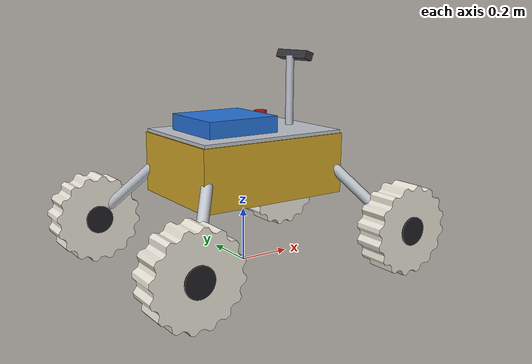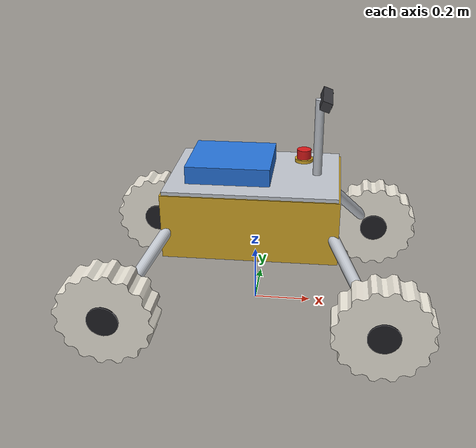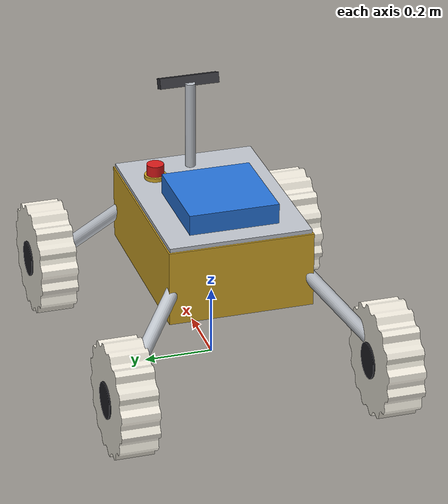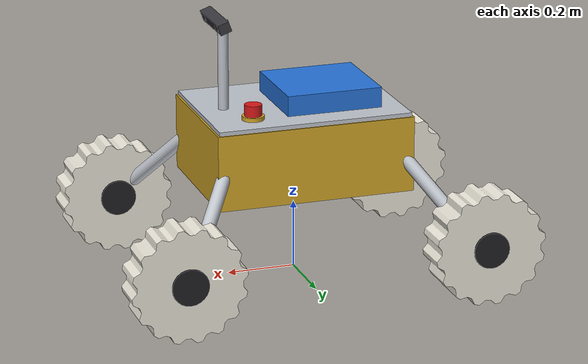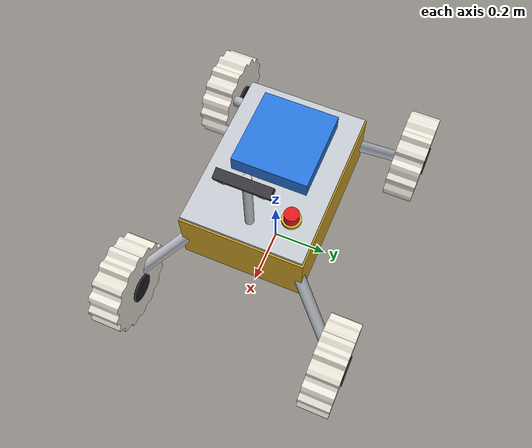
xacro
<?xml version="1.0"?>
<robot xmlns:xacro="http://www.ros.org/wiki/xacro" name="cat_rover">

  <xacro:include filename="cat_rover_properties.xacro"/>

  <!-- ================= BASE FOOTPRINT ================= -->
  <!-- Anchors on the ground plane directly below the chassis center -->
  <link name="base_footprint"/>

  <joint name="base_footprint_joint" type="fixed">
    <parent link="base_footprint"/>
    <child link="base_link"/>
    <origin xyz="0 0 ${chassis_z}" rpy="0 0 0"/>
  </joint>

  <!-- ================= BASE LINK (CENTRAL CHASSIS) ================= -->
  <link name="base_link">
    <!-- Main Frame Body (Yellow/Gold Anodized Structure) -->
    <visual>
      <origin xyz="0 0 0" rpy="0 0 0"/>
      <geometry>
        <box size="${chassis_length} ${chassis_width} ${chassis_height}"/>
      </geometry>
      <material name="cat_gold"/>
    </visual>
    <!-- Central Inner Cavity (Black Core) -->
    <visual>
      <origin xyz="0 0 -0.02" rpy="0 0 0"/>
      <geometry>
        <box size="${chassis_length * 0.88} ${chassis_width * 0.85} ${chassis_height * 0.80}"/>
      </geometry>
      <material name="matte_black"/>
    </visual>
    <collision>
      <origin xyz="0 0 0" rpy="0 0 0"/>
      <geometry>
        <box size="${chassis_length} ${chassis_width} ${chassis_height}"/>
      </geometry>
    </collision>
    <inertial>
      <origin xyz="0 0 0" rpy="0 0 0"/>
      <mass value="${chassis_mass}"/>
      <inertia ixx="0.35" ixy="0.0" ixz="0.0"
               iyy="0.55" iyz="0.0"
               izz="0.65"/>
    </inertial>
  </link>

  <!-- ================= TOP DECK & ELECTRONICS ================= -->
  <link name="top_deck_link">
    <!-- Top Mounting Plate -->
    <visual>
      <geometry>
        <box size="${chassis_length * 0.98} ${chassis_width * 0.98} 0.012"/>
      </geometry>
      <material name="aluminum_silver"/>
    </visual>
    <!-- Electronics Control Box -->
    <visual>
      <origin xyz="-0.08 0 0.035" rpy="0 0 0"/>
      <geometry>
        <box size="0.28 0.26 0.06"/>
      </geometry>
      <material name="accent_blue"/>
    </visual>
    <!-- COTS E-STOP Button (Red Mushroom with Yellow Collar) -->
    <visual>
      <origin xyz="0.16 0.12 0.03" rpy="0 0 0"/>
      <geometry>
        <cylinder radius="0.025" length="0.04"/>
      </geometry>
      <material name="estop_red"/>
    </visual>
    <visual>
      <origin xyz="0.16 0.12 0.01" rpy="0 0 0"/>
      <geometry>
        <cylinder radius="0.032" length="0.015"/>
      </geometry>
      <material name="cat_gold"/>
    </visual>
    <collision>
      <geometry>
        <box size="${chassis_length * 0.98} ${chassis_width * 0.98} 0.012"/>
      </geometry>
    </collision>
    <inertial>
      <mass value="2.5"/>
      <inertia ixx="0.04" ixy="0" ixz="0" iyy="0.06" iyz="0" izz="0.08"/>
    </inertial>
  </link>

  <joint name="top_deck_joint" type="fixed">
    <parent link="base_link"/>
    <child link="top_deck_link"/>
    <origin xyz="0 0 ${chassis_height / 2.0 + 0.006}" rpy="0 0 0"/>
  </joint>

  <!-- ================= FOUR STRADDLE LEGS & WHEEL MACRO ================= -->
  <xacro:macro name="cat_leg_and_wheel" params="prefix x_sign y_sign">

    <!-- Leg Strut (Diagonal Aluminum Extrusion Tube) -->
    <link name="${prefix}_leg_link">
      <visual>
        <!-- Cylinder oriented along the diagonal direction -->
        <origin xyz="${x_sign * 0.10} ${y_sign * 0.10} -0.115" rpy="${y_sign * 0.62} ${-x_sign * 0.62} 0"/>
        <geometry>
          <cylinder radius="${leg_radius}" length="0.36"/>
        </geometry>
        <material name="aluminum_silver"/>
      </visual>
      <!-- Wheel Mount Bracket at bottom of leg -->
      <visual>
        <origin xyz="${x_sign * 0.20} ${y_sign * 0.20} -0.23" rpy="0 0 0"/>
        <geometry>
          <box size="0.08 0.06 0.08"/>
        </geometry>
        <material name="matte_black"/>
      </visual>
      <collision>
        <origin xyz="${x_sign * 0.10} ${y_sign * 0.10} -0.115" rpy="${y_sign * 0.62} ${-x_sign * 0.62} 0"/>
        <geometry>
          <cylinder radius="${leg_radius}" length="0.36"/>
        </geometry>
      </collision>
      <inertial>
        <origin xyz="${x_sign * 0.10} ${y_sign * 0.10} -0.115" rpy="0 0 0"/>
        <mass value="${leg_mass}"/>
        <inertia ixx="0.01" ixy="0" ixz="0" iyy="0.01" iyz="0" izz="0.005"/>
      </inertial>
    </link>

    <!-- Prismatic Suspension Joint: gives deep vertical compliance so wheel drops into craters -->
    <joint name="${prefix}_leg_joint" type="prismatic">
      <parent link="base_link"/>
      <child link="${prefix}_leg_link"/>
      <origin xyz="${x_sign * (chassis_length/2.0 - 0.05)} ${y_sign * (chassis_width/2.0 - 0.03)} 0" rpy="0 0 0"/>
      <axis xyz="0 0 1"/>
      <limit lower="-0.28" upper="0.08" effort="1200.0" velocity="2.0"/>
      <dynamics damping="25.0" friction="0.05"/>
    </joint>

    <gazebo reference="${prefix}_leg_joint">
      <springStiffness>450.0</springStiffness>
      <springReference>-0.12</springReference>
      <implicitSpringDamper>true</implicitSpringDamper>
    </gazebo>

    <!-- Cleated Sand Wheel -->
    <link name="${prefix}_wheel_link">
      <!-- High-Fidelity Cleated Wheel Mesh -->
      <visual>
        <origin xyz="0 0 0" rpy="0 0 0"/>
        <geometry>
          <mesh filename="file://$(find caterpillar_challenge)/description/meshes/cleated_wheel.obj" scale="1 1 1"/>
        </geometry>
        <material name="wheel_white"/>
      </visual>
      <!-- Inner Motor Hub Visual -->
      <visual>
        <origin xyz="0 0 0" rpy="0 0 0"/>
        <geometry>
          <cylinder radius="${wheel_radius * 0.35}" length="${wheel_width + 0.01}"/>
        </geometry>
        <material name="matte_black"/>
      </visual>
      <!-- Wheel Collision Cylinder -->
      <collision>
        <origin xyz="0 0 0" rpy="0 0 0"/>
        <geometry>
          <cylinder radius="${wheel_radius}" length="${wheel_width}"/>
        </geometry>
      </collision>
      <inertial>
        <origin xyz="0 0 0" rpy="0 0 0"/>
        <mass value="${wheel_mass}"/>
        <inertia ixx="${(wheel_mass/12.0) * (3*wheel_radius*wheel_radius + wheel_width*wheel_width)}" ixy="0" ixz="0"
                 iyy="${(wheel_mass/12.0) * (3*wheel_radius*wheel_radius + wheel_width*wheel_width)}" iyz="0"
                 izz="${0.5 * wheel_mass * wheel_radius * wheel_radius}"/>
      </inertial>
    </link>

    <!-- Continuous Drive Joint (Mounted at the bottom of the suspended leg) -->
    <joint name="${prefix}_wheel_joint" type="continuous">
      <parent link="${prefix}_leg_link"/>
      <child link="${prefix}_wheel_link"/>
      <origin xyz="${x_sign * 0.20} ${y_sign * 0.20} -0.23" rpy="-1.5708 0 0"/>
      <axis xyz="0 0 1"/>
      <limit effort="80.0" velocity="12.0"/>
      <dynamics damping="0.1" friction="0.05"/>
    </joint>

    <!-- Gazebo Wheel Surface Friction Properties -->
    <gazebo reference="${prefix}_wheel_link">
      <mu1>0.95</mu1>
      <mu2>0.75</mu2>
      <kp>1000000.0</kp>
      <kd>100.0</kd>
      <minDepth>0.002</minDepth>
      <material>
        <ambient>0.90 0.88 0.85 1.0</ambient>
        <diffuse>0.92 0.90 0.88 1.0</diffuse>
        <specular>0.1 0.1 0.1 1.0</specular>
      </material>
    </gazebo>

  </xacro:macro>

  <!-- Instantiate Four Legs & Wheels -->
  <!-- Left Side: y_sign = +1.0 -->
  <xacro:cat_leg_and_wheel prefix="front_left" x_sign="1.0"  y_sign="1.0"/>
  <xacro:cat_leg_and_wheel prefix="rear_left"  x_sign="-1.0" y_sign="1.0"/>

  <!-- Right Side: y_sign = -1.0 -->
  <xacro:cat_leg_and_wheel prefix="front_right" x_sign="1.0"  y_sign="-1.0"/>
  <xacro:cat_leg_and_wheel prefix="rear_right"  x_sign="-1.0" y_sign="-1.0"/>

  <!-- ================= IMU SENSOR ================= -->
  <link name="imu_link"/>
  <joint name="imu_joint" type="fixed">
    <parent link="base_link"/>
    <child link="imu_link"/>
    <origin xyz="0 0 0" rpy="0 0 0"/>
  </joint>

  <!-- ================= SENSOR MAST & ZED 2i CAMERA ================= -->
  <link name="camera_mast_link">
    <visual>
      <origin xyz="0 0 ${mast_height / 2.0}" rpy="0 0 0"/>
      <geometry>
        <cylinder radius="${mast_radius}" length="${mast_height}"/>
      </geometry>
      <material name="aluminum_silver"/>
    </visual>
    <collision>
      <origin xyz="0 0 ${mast_height / 2.0}" rpy="0 0 0"/>
      <geometry>
        <cylinder radius="${mast_radius}" length="${mast_height}"/>
      </geometry>
    </collision>
    <inertial>
      <origin xyz="0 0 ${mast_height / 2.0}" rpy="0 0 0"/>
      <mass value="0.35"/>
      <inertia ixx="0.002" ixy="0" ixz="0" iyy="0.002" iyz="0" izz="0.0002"/>
    </inertial>
  </link>

  <joint name="camera_mast_joint" type="fixed">
    <parent link="top_deck_link"/>
    <child link="camera_mast_link"/>
    <!-- Mounted near front-center of top deck -->
    <origin xyz="${chassis_length/2.0 - 0.08} 0 0.006" rpy="0 0 0"/>
  </joint>

  <!-- ZED 2i Stereo Camera Bar (175mm wide, 30mm high, 33mm deep) -->
  <link name="camera_link">
    <visual>
      <origin xyz="0 0 0" rpy="0 0 0"/>
      <geometry>
        <box size="0.033 0.175 0.030"/>
      </geometry>
      <material name="zed_dark"/>
    </visual>
    <!-- Left Lens Visual -->
    <visual>
      <origin xyz="0.017 0.06 0" rpy="0 1.5708 0"/>
      <geometry>
        <cylinder radius="0.012" length="0.004"/>
      </geometry>
      <material name="matte_black"/>
    </visual>
    <!-- Right Lens Visual -->
    <visual>
      <origin xyz="0.017 -0.06 0" rpy="0 1.5708 0"/>
      <geometry>
        <cylinder radius="0.012" length="0.004"/>
      </geometry>
      <material name="matte_black"/>
    </visual>
    <collision>
      <geometry>
        <box size="0.033 0.175 0.030"/>
      </geometry>
    </collision>
    <inertial>
      <mass value="0.25"/>
      <inertia ixx="0.0005" ixy="0" ixz="0" iyy="0.0001" iyz="0" izz="0.0005"/>
    </inertial>
  </link>

  <joint name="camera_joint" type="fixed">
    <parent link="camera_mast_link"/>
    <child link="camera_link"/>
    <!-- Tilted downward ~20 degrees (camera_pitch) to inspect terrain 0.5m-3.5m ahead -->
    <origin xyz="0.02 0 ${mast_height}" rpy="0 ${camera_pitch} 0"/>
  </joint>

  <!-- ROS Standard Optical Frame (Z Forward, X Right, Y Down) -->
  <link name="camera_optical_link"/>
  <joint name="camera_optical_joint" type="fixed">
    <parent link="camera_link"/>
    <child link="camera_optical_link"/>
    <origin xyz="0 0 0" rpy="-1.5708 0 -1.5708"/>
  </joint>

  <!-- ================= GAZEBO SENSORS & SYSTEM PLUGINS ================= -->

  <!-- IMU Sensor -->
  <gazebo reference="imu_link">
    <sensor name="cat_imu" type="imu">
      <always_on>true</always_on>
      <update_rate>100.0</update_rate>
      <topic>/imu/data</topic>
      <ignition_frame_id>imu_link</ignition_frame_id>
      <gz_frame_id>imu_link</gz_frame_id>
    </sensor>
  </gazebo>

  <!-- ZED 2i Stereo RGB-D Depth Camera -->
  <gazebo reference="camera_link">
    <sensor name="zed2i_camera" type="rgbd_camera">
      <always_on>true</always_on>
      <visualize>true</visualize>
      <update_rate>15.0</update_rate>
      <topic>/depth_camera/image_raw</topic>
      <ignition_frame_id>camera_link</ignition_frame_id>
      <gz_frame_id>camera_link</gz_frame_id>
      <camera>
        <!-- Horizontal FOV: ~110 deg matching ZED 2i wide-angle stereo -->
        <horizontal_fov>1.92</horizontal_fov>
        <image>
          <width>960</width>
          <height>540</height>
          <format>R8G8B8</format>
        </image>
        <clip>
          <near>0.3</near>
          <far>8.0</far>
        </clip>
        <depth_camera>
          <clip>
            <near>0.35</near>
            <far>6.0</far>
          </clip>
        </depth_camera>
      </camera>
    </sensor>
  </gazebo>

  <!-- ================= ROS 2 CONTROL HARDWARE INTERFACES ================= -->
  <ros2_control name="IgnitionSystem" type="system">
    <hardware>
      <plugin>gz_ros2_control/GazeboSimSystem</plugin>
    </hardware>
    <joint name="front_left_wheel_joint">
      <command_interface name="velocity">
        <param name="min">-12.0</param>
        <param name="max">12.0</param>
      </command_interface>
      <state_interface name="velocity"/>
      <state_interface name="position"/>
    </joint>
    <joint name="rear_left_wheel_joint">
      <command_interface name="velocity">
        <param name="min">-12.0</param>
        <param name="max">12.0</param>
      </command_interface>
      <state_interface name="velocity"/>
      <state_interface name="position"/>
    </joint>
    <joint name="front_right_wheel_joint">
      <command_interface name="velocity">
        <param name="min">-12.0</param>
        <param name="max">12.0</param>
      </command_interface>
      <state_interface name="velocity"/>
      <state_interface name="position"/>
    </joint>
    <joint name="rear_right_wheel_joint">
      <command_interface name="velocity">
        <param name="min">-12.0</param>
        <param name="max">12.0</param>
      </command_interface>
      <state_interface name="velocity"/>
      <state_interface name="position"/>
    </joint>
    <!-- Passive Prismatic Suspension Joints (State Only) -->
    <joint name="front_left_leg_joint">
      <state_interface name="position"/>
      <state_interface name="velocity"/>
    </joint>
    <joint name="rear_left_leg_joint">
      <state_interface name="position"/>
      <state_interface name="velocity"/>
    </joint>
    <joint name="front_right_leg_joint">
      <state_interface name="position"/>
      <state_interface name="velocity"/>
    </joint>
    <joint name="rear_right_leg_joint">
      <state_interface name="position"/>
      <state_interface name="velocity"/>
    </joint>
  </ros2_control>

  <!-- ================= GAZEBO ROS 2 CONTROL PLUGIN ================= -->
  <gazebo>
    <plugin filename="gz_ros2_control-system" name="gz_ros2_control::GazeboSimROS2ControlPlugin">
      <parameters>$(find caterpillar_challenge)/config/ros2_controllers.yaml</parameters>
      <ros>
        <remapping>/diff_drive_base_controller/cmd_vel_unstamped:=/cmd_vel</remapping>
        <remapping>/diff_drive_base_controller/odom:=/odom</remapping>
      </ros>
    </plugin>
  </gazebo>

</robot>

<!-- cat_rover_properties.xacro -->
<robot xmlns:xacro="http://www.ros.org/wiki/xacro">

  <!-- ================= ROVER PHYSICAL PROPERTIES ================= -->
  <!-- Conforms to Caterpillar Autonomy Challenge envelope: 1.5m L x 0.75m W x 0.75m H, Max 80kg -->

  <!-- Central Chassis Box -->
  <xacro:property name="chassis_length" value="0.58" />
  <xacro:property name="chassis_width"  value="0.42" />
  <xacro:property name="chassis_height" value="0.22" />
  <xacro:property name="chassis_mass"   value="18.0" />
  <xacro:property name="chassis_z"      value="0.38" /> <!-- Center of chassis above ground -->

  <!-- Four Straddle Legs (Angled Tubular Extrusions) -->
  <xacro:property name="wheelbase"      value="0.88" /> <!-- Distance between front and rear wheel axles -->
  <xacro:property name="track_width"    value="0.76" /> <!-- Distance between left and right wheel centers -->
  <xacro:property name="wheel_x_offset" value="${wheelbase / 2.0}" />
  <xacro:property name="wheel_y_offset" value="${track_width / 2.0}" />
  <xacro:property name="leg_radius"     value="0.020" /> <!-- 40mm diameter aluminum tube -->
  <xacro:property name="leg_mass"       value="1.2" />

  <!-- Wheels (Cleated Sand Wheels matching uploaded images) -->
  <xacro:property name="wheel_radius"   value="0.15" />  <!-- 30 cm diameter -->
  <xacro:property name="wheel_width"    value="0.11" />  <!-- 11 cm width -->
  <xacro:property name="wheel_mass"     value="2.2" />
  <xacro:property name="wheel_z"        value="${wheel_radius}" /> <!-- 0.15m axle height -->

  <!-- Sensor Mast & ZED 2i Camera -->
  <xacro:property name="mast_height"    value="0.26" />
  <xacro:property name="mast_radius"    value="0.015" />
  <xacro:property name="camera_pitch"   value="0.35" /> <!-- Tilted downward ~20 degrees to view 0.5-3.5m terrain -->

  <!-- Materials & Colors -->
  <material name="cat_gold">
    <color rgba="0.82 0.65 0.15 1.0"/>
  </material>
  <material name="aluminum_silver">
    <color rgba="0.75 0.77 0.80 1.0"/>
  </material>
  <material name="wheel_white">
    <color rgba="0.92 0.90 0.85 1.0"/>
  </material>
  <material name="matte_black">
    <color rgba="0.12 0.12 0.14 1.0"/>
  </material>
  <material name="estop_red">
    <color rgba="0.85 0.10 0.10 1.0"/>
  </material>
  <material name="zed_dark">
    <color rgba="0.22 0.22 0.24 1.0"/>
  </material>
  <material name="accent_blue">
    <color rgba="0.15 0.45 0.85 1.0"/>
  </material>

</robot>
